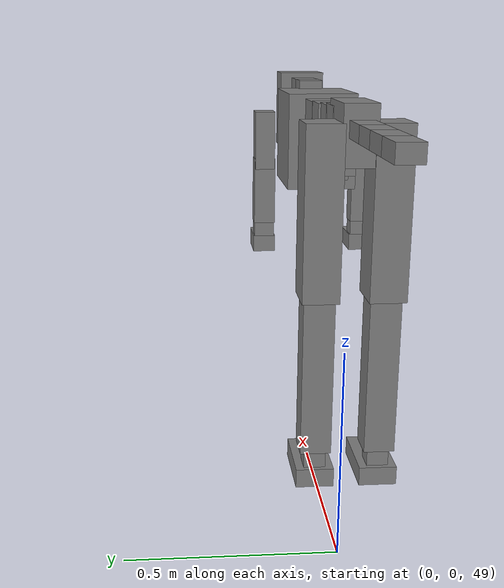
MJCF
<mujoco model="dog">

    <default>
        <joint armature="0.02" stiffness="1" damping="0.2" limited="true"/>
        <geom condim="3" friction="1 0.05 0.05" margin="0.01"/>
        <motor ctrllimited="true" ctrlrange="-1.0 1.0" forcelimited="true" gear="50"/>
    </default>

    <compiler inertiafromgeom="true" angle="radian"/>

    <option timestep="0.016" iterations="50" tolerance="1e-10" solver="Newton" jacobian="dense" cone="pyramidal"/>

    <size nconmax="20000" njmax="60000" nstack="5000000"/>
    <visual>
        <map force="0.1" zfar="30"/>
        <rgba haze="0.15 0.25 0.35 1"/>
        <quality shadowsize="2048"/>
        <global offwidth="800" offheight="800"/>
    </visual>

    <asset>
        <texture type="skybox" builtin="gradient" rgb1="0.3 0.5 0.7" rgb2="0 0 0" width="512" height="512"/>
        <texture name="texplane" type="2d" builtin="checker" rgb1=".2 .3 .4" rgb2=".1 0.15 0.2" width="512" height="512"
                 mark="cross" markrgb=".8 .8 .8"/>
        <texture name="texgeom" type="cube" builtin="flat" mark="cross" width="127" height="1278" rgb1="0.8 0.6 0.4"
                 rgb2="0.8 0.6 0.4" markrgb="1 1 1" random="0.01"/>

        <material name="matplane" reflectance="0.3" texture="texplane" texrepeat="1 1" texuniform="true"/>
        <material name="matgeom" texture="texgeom" texuniform="true" rgba="0.8 0.6 .4 1"/>
    </asset>

    <worldbody>
        <geom name="floor" pos="0 0 0" size="0 0 .25" type="plane" material="matplane" condim="3"/>

        <light directional="false" diffuse=".2 .2 .2" specular="0 0 0" pos="0 0 5" dir="0 0 -1" castshadow="false"/>
        <light mode="targetbodycom" target="torso" directional="false" diffuse=".8 .8 .8" specular="0.3 0.3 0.3"
               pos="0 0 4.0" dir="0 0 -1"/>

        <body name="root" pos="0 0 50">
            <freejoint name="root_1"/>
            <geom type="box" pos="0 0 -0.02" size="0.0774  0.0358  0.063" density="2030"/>

            <body name="spine1" pos="0.054 0 0">
                <joint name="spine1_y" axis="0 1 0" range="0 0.7" limited="true"/>
                <geom type="box" pos="0.02375 0 -0.03" size="0.04375  0.0375  0.05985" density="2030"/>

                <body name="spine2" pos="0.0612 0 0">
                    <joint name="spine2_y" axis="0 1 0" range="-0.15 0.15" limited="true"/>
                    <geom type="box" pos="0.03555  0  -0.04" size="0.04055  0.039  0.06615" density="2030"/>

                    <body name="spine3" pos="0.0730 0 0">
                        <joint name="spine3_y" axis="0 1 0" range="-0.15 0.15" limited="true"/>
                        <geom type="box" pos="0.03555  0  -0.057" size="0.04555  0.0445  0.081" density="2030"/>

                        <body name="spine4" pos="0.0780 0 0">
                            <joint name="spine4_y" axis="0 1 0" range="-0.15 0.15" limited="true"/>
                            <geom type="box" pos="0.05265  0  -0.07" size="0.05265  0.045  0.09135" density="2030"/>

                            <body name="torso" pos="0.1082 0 0">
                                <joint name="torso_y" axis="0 1 0" range="-0.15 0.15" limited="true"/>
                                <geom type="box" pos="0.11925  0  -0.085" size="0.11925  0.085  0.11745"
                                      density="2030"/>

                                <body name="neck1" pos="0.2160  0   0.0180">
                                    <joint name="neck1_y" axis="0 1 0" range="-1.2  -1" limited="true"/>
                                    <geom type="box" pos="0.0423  0  0" size="0.0423  0.03  0.036" density="2325"/>

                                    <body name="neck2" pos="0.0853  0  0">
                                        <joint name="neck2_y" axis="0 1 0" range="0.1  0" limited="true"/>
                                        <geom type="box" pos="0.0423  0  0" size="0.0423  0.03  0.036" density="2325"/>

                                        <body name="head" pos="0.0853  0  0">
                                            <joint name="head_y" axis="0 1 0" range="-0.3  -0.2" limited="true"/>
                                            <geom type="box" pos="0.0531  0  -0.055" size="0.0531  0.06  0.1044"
                                                  density="4030"/>

                                        </body>
                                    </body>
                                </body>

                                <body name="front_shoulder" pos="0.156  0   -0.0480">
                                    <joint name="front_shoulder_y" axis="0 1 0" range="-1 1.5" limited="true"/>
                                    <geom type="box" pos="0 0.13 -0.0474" size="0.0298  0.0254  0.0740" density="1158"/>
                                    <geom type="box" pos="0 -0.13 -0.0474" size="0.0298  0.0254  0.0740"
                                          density="1158"/>

                                    <body name="front_elbow" pos="0  0  -0.0948">
                                        <joint name="front_elbow_y" axis="0 1 0" range="-2 0" limited="true"/>
                                        <geom type="box" pos="0 0.13 -0.0852" size="0.0266  0.0272  0.0852"
                                              density="1081"/>
                                        <geom type="box" pos="0 -0.13 -0.0852" size="0.0266  0.0272  0.0852"
                                              density="1081"/>

                                        <body name="front_wrist" pos="0  0  -0.1703">
                                            <joint name="front_wrist_y" axis="0 1 0" range="-0.2 0" limited="true"/>
                                            <geom type="box" pos="0 0.13 -0.0258" size="0.0233  0.0259  0.0389"
                                                  density="1664"/>
                                            <geom type="box" pos="0 -0.13 -0.0258" size="0.0233  0.0259  0.0389"
                                                  density="1664"/>

                                            <body name="front_finger_end" pos="0  0  -0.0516">
                                                <joint name="front_finger_y" axis="0 1 0" range="-0.4 1"
                                                       limited="true"/>
                                                <geom type="box" pos="0.0287  0.13  -0.0062"
                                                      size="0.0527  0.0287  0.0212" density="1515"/>
                                                <geom type="box" pos="0.0287  -0.13  -0.0062"
                                                      size="0.0527  0.0287  0.0212" density="1515"/>

                                            </body>

                                        </body>
                                    </body>
                                </body>

                            </body>
                        </body>
                    </body>
                </body>
            </body>

            <body name="back_hip" pos="-0.03 0 -0.018">
                <joint name="back_hip_y" axis="0 1 0" range="-1.5 0.3" limited="true"/>
                <geom type="box" pos="0 0.07 -0.1603" size="0.0503  0.0394  0.1831" density="1154"/>
                <geom type="box" pos="0 -0.07 -0.1603" size="0.0503  0.0394  0.1831" density="1154"/>

                <body name="back_knee" pos="0  0  -0.3206">
                    <joint name="back_knee_y" axis="0 1 0" range="0 2.8" limited="true"/>
                    <geom type="box" pos="0 0.07 -0.1763" size="0.0340  0.0335  0.1919" density="1227"/>
                    <geom type="box" pos="0 -0.07 -0.1763" size="0.0340  0.0335  0.1919" density="1227"/>

                    <body name="back_ankle" pos="0  0  -0.3526">
                        <joint name="back_ankle_y" axis="0 1 0" range="-2.2 0" limited="true"/>
                        <geom type="box" pos="0 0.07 -0.0344" size="0.0237  0.0237  0.0456" density="1284"/>
                        <geom type="box" pos="0 -0.07 -0.0344" size="0.0237  0.0237  0.0456" density="1284"/>

                        <body name="back_toe_end" pos="0  0  -0.0687">
                            <joint name="back_toe_y" axis="0 1 0" range="-0.4 1" limited="true"/>
                            <geom type="box" pos="0.0415  0.07  -0.0059" size="0.0761  0.0415  0.0209" density="1515"/>
                            <geom type="box" pos="0.0415  -0.07  -0.0059" size="0.0761  0.0415  0.0209" density="1515"/>

                        </body>
                    </body>
                </body>
            </body>

            <body name="tail1" pos="-0.074 0 -0.006">
                <joint name="tail1_y" axis="0 1 0" range="-0.2 0.2" limited="true"/>
                <geom type="box" pos="-0.0536  0  0" size="0.045  0.025  0.0175" density="1587"/>

                <body name="tail2" pos="-0.09 0 0">
                    <joint name="tail2_y" axis="0 1 0" range="-0.2 0.2" limited="true"/>
                    <geom type="box" pos="-0.0536  0  0" size="0.045  0.025  0.0175" density="1587"/>

                    <body name="tail3" pos="-0.09 0 0">
                        <joint name="tail3_y" axis="0 1 0" range="-0.2 0.2" limited="true"/>
                        <geom type="box" pos="-0.0536  0  0" size="0.045  0.025  0.0175" density="1587"/>

                        <body name="tail4" pos="-0.09 0 0">
                            <joint name="tail4_y" axis="0 1 0" range="-0.2 0.2" limited="true"/>
                            <geom type="box" pos="-0.0536  0  0" size="0.045  0.025  0.0175" density="1587"/>

                        </body>
                    </body>
                </body>
            </body>
        </body>
    </worldbody>

    <actuator>
        <motor joint="spine1_y" forcerange="-150 150     "/>
        <motor joint="spine2_y" forcerange="-150 150     "/>
        <motor joint="spine3_y" forcerange="-150 150     "/>
        <motor joint="spine4_y" forcerange="-150 150     "/>
        <motor joint="torso_y" forcerange="-150 150     "/>
        <motor joint="neck1_y" forcerange="-100 100       "/>
        <motor joint="neck2_y" forcerange="-100 100       "/>
        <motor joint="head_y" forcerange="-150 150       "/>
        <motor joint="front_shoulder_y" forcerange="-120.36 149.18"/>
        <motor joint="front_elbow_y" forcerange="-194.98 103.09"/>
        <motor joint="front_wrist_y" forcerange="-114.85 92.60"/>
        <motor joint="front_finger_y" forcerange="-72.31 40.90"/>
        <motor joint="back_hip_y" forcerange="-370.74 354.82"/>
        <motor joint="back_knee_y" forcerange="-374.53 312.65"/>
        <motor joint="back_angle_y" forcerange="-69.40 209.29"/>
        <motor joint="back_toe_y" forcerange="-136.32 115.61"/>
        <motor joint="tail1_y" forcerange="-50 50     "/>
        <motor joint="tail2_y" forcerange="-50 50     "/>
        <motor joint="tail3_y" forcerange="-50 50     "/>
        <motor joint="tail4_y" forcerange="-50 50     "/>
    </actuator>
</mujoco>
